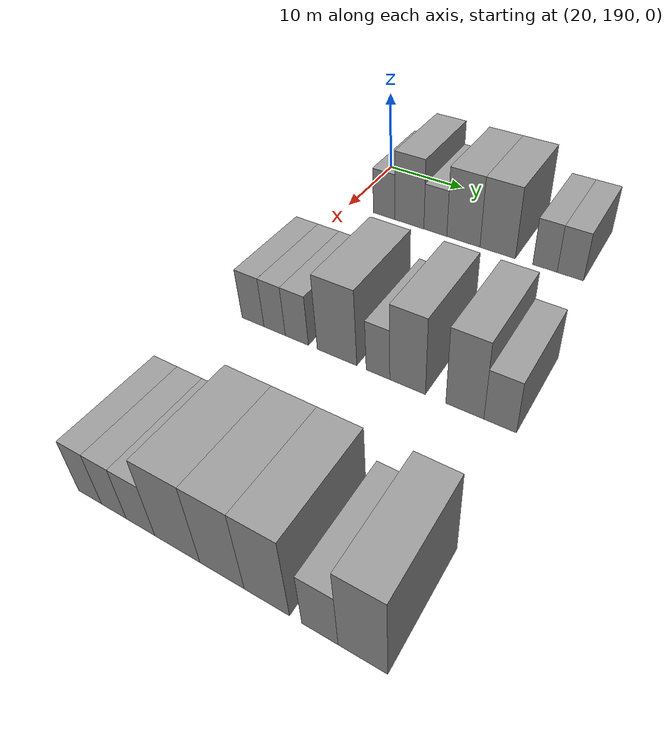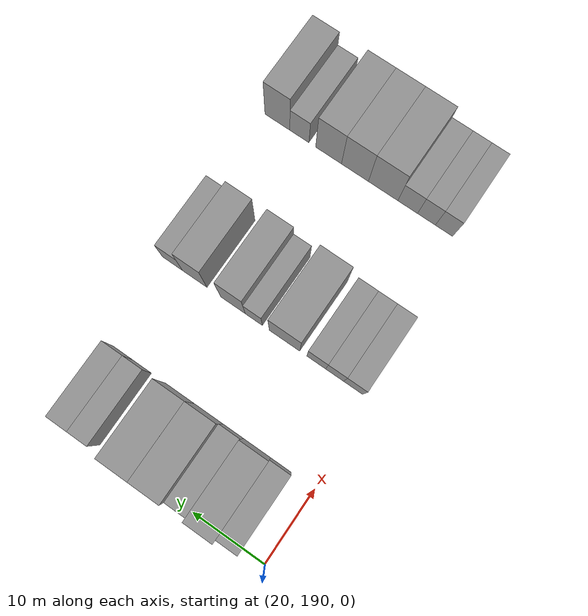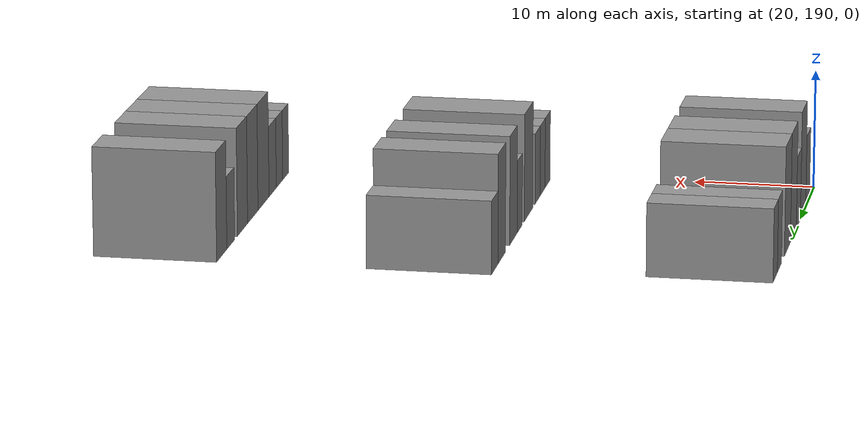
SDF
<sdf version="1.6">
 <world name="default">
  <model name="building_111">
   <static>1</static>
   <pose>25.0000 194.7516 0 0.000000 0.000000 0.000000</pose>
   <link name="link">
    <pose>0 0 3.00 0 0 0</pose>
    <collision name="collision"><geometry><box><size>10.0000 2.8600 6.0000</size></box></geometry></collision>
    <visual name="visual">
     <cast_shadows>0</cast_shadows>
     <geometry><box><size>10.0000 2.8600 6.0000</size></box></geometry>
     <material>
      <script>
       <uri>model://grey_wall/materials/scripts</uri>
       <uri>model://grey_wall/materials/textures</uri>
       <name>vrc/grey_wall</name>
      </script>
     </material>
    </visual>
   </link>
  </model>
  <model name="building_112">
   <static>1</static>
   <pose>25.0000 198.0817 0 0.000000 0.000000 0.000000</pose>
   <link name="link">
    <pose>0 0 4.50 0 0 0</pose>
    <collision name="collision"><geometry><box><size>10.0000 3.8003 9.0000</size></box></geometry></collision>
    <visual name="visual">
     <cast_shadows>0</cast_shadows>
     <geometry><box><size>10.0000 3.8003 9.0000</size></box></geometry>
     <material>
      <script>
       <uri>model://grey_wall/materials/scripts</uri>
       <uri>model://grey_wall/materials/textures</uri>
       <name>vrc/grey_wall</name>
      </script>
     </material>
    </visual>
   </link>
  </model>
  <model name="building_113">
   <static>1</static>
   <pose>25.0000 201.4371 0 0.000000 0.000000 0.000000</pose>
   <link name="link">
    <pose>0 0 3.00 0 0 0</pose>
    <collision name="collision"><geometry><box><size>10.0000 2.9106 6.0000</size></box></geometry></collision>
    <visual name="visual">
     <cast_shadows>0</cast_shadows>
     <geometry><box><size>10.0000 2.9106 6.0000</size></box></geometry>
     <material>
      <script>
       <uri>model://grey_wall/materials/scripts</uri>
       <uri>model://grey_wall/materials/textures</uri>
       <name>vrc/grey_wall</name>
      </script>
     </material>
    </visual>
   </link>
  </model>
  <model name="building_114">
   <static>1</static>
   <pose>25.0000 204.9278 0 0.000000 0.000000 0.000000</pose>
   <link name="link">
    <pose>0 0 4.50 0 0 0</pose>
    <collision name="collision"><geometry><box><size>10.0000 4.0708 9.0000</size></box></geometry></collision>
    <visual name="visual">
     <cast_shadows>0</cast_shadows>
     <geometry><box><size>10.0000 4.0708 9.0000</size></box></geometry>
     <material>
      <script>
       <uri>model://grey_wall/materials/scripts</uri>
       <uri>model://grey_wall/materials/textures</uri>
       <name>vrc/grey_wall</name>
      </script>
     </material>
    </visual>
   </link>
  </model>
  <model name="building_115">
   <static>1</static>
   <pose>25.0000 209.0566 0 0.000000 0.000000 0.000000</pose>
   <link name="link">
    <pose>0 0 4.50 0 0 0</pose>
    <collision name="collision"><geometry><box><size>10.0000 4.1867 9.0000</size></box></geometry></collision>
    <visual name="visual">
     <cast_shadows>0</cast_shadows>
     <geometry><box><size>10.0000 4.1867 9.0000</size></box></geometry>
     <material>
      <script>
       <uri>model://grey_wall/materials/scripts</uri>
       <uri>model://grey_wall/materials/textures</uri>
       <name>vrc/grey_wall</name>
      </script>
     </material>
    </visual>
   </link>
  </model>
  <model name="building_116">
   <static>1</static>
   <pose>25.0000 214.5141 0 0.000000 0.000000 0.000000</pose>
   <link name="link">
    <pose>0 0 3.00 0 0 0</pose>
    <collision name="collision"><geometry><box><size>10.0000 2.7284 6.0000</size></box></geometry></collision>
    <visual name="visual">
     <cast_shadows>0</cast_shadows>
     <geometry><box><size>10.0000 2.7284 6.0000</size></box></geometry>
     <material>
      <script>
       <uri>model://grey_wall/materials/scripts</uri>
       <uri>model://grey_wall/materials/textures</uri>
       <name>vrc/grey_wall</name>
      </script>
     </material>
    </visual>
   </link>
  </model>
  <model name="building_117">
   <static>1</static>
   <pose>25.0000 217.3220 0 0.000000 0.000000 0.000000</pose>
   <link name="link">
    <pose>0 0 3.00 0 0 0</pose>
    <collision name="collision"><geometry><box><size>10.0000 2.8875 6.0000</size></box></geometry></collision>
    <visual name="visual">
     <cast_shadows>0</cast_shadows>
     <geometry><box><size>10.0000 2.8875 6.0000</size></box></geometry>
     <material>
      <script>
       <uri>model://grey_wall/materials/scripts</uri>
       <uri>model://grey_wall/materials/textures</uri>
       <name>vrc/grey_wall</name>
      </script>
     </material>
    </visual>
   </link>
  </model>
  <model name="building_230">
   <static>1</static>
   <pose>47.0000 192.7824 0 0.000000 0.000000 0.000000</pose>
   <link name="link">
    <pose>0 0 3.00 0 0 0</pose>
    <collision name="collision"><geometry><box><size>10.0000 2.6718 6.0000</size></box></geometry></collision>
    <visual name="visual">
     <cast_shadows>0</cast_shadows>
     <geometry><box><size>10.0000 2.6718 6.0000</size></box></geometry>
     <material>
      <script>
       <uri>model://grey_wall/materials/scripts</uri>
       <uri>model://grey_wall/materials/textures</uri>
       <name>vrc/grey_wall</name>
      </script>
     </material>
    </visual>
   </link>
  </model>
  <model name="building_231">
   <static>1</static>
   <pose>47.0000 195.3844 0 0.000000 0.000000 0.000000</pose>
   <link name="link">
    <pose>0 0 3.00 0 0 0</pose>
    <collision name="collision"><geometry><box><size>10.0000 2.5320 6.0000</size></box></geometry></collision>
    <visual name="visual">
     <cast_shadows>0</cast_shadows>
     <geometry><box><size>10.0000 2.5320 6.0000</size></box></geometry>
     <material>
      <script>
       <uri>model://grey_wall/materials/scripts</uri>
       <uri>model://grey_wall/materials/textures</uri>
       <name>vrc/grey_wall</name>
      </script>
     </material>
    </visual>
   </link>
  </model>
  <model name="building_232">
   <static>1</static>
   <pose>47.0000 197.9877 0 0.000000 0.000000 0.000000</pose>
   <link name="link">
    <pose>0 0 3.00 0 0 0</pose>
    <collision name="collision"><geometry><box><size>10.0000 2.6748 6.0000</size></box></geometry></collision>
    <visual name="visual">
     <cast_shadows>0</cast_shadows>
     <geometry><box><size>10.0000 2.6748 6.0000</size></box></geometry>
     <material>
      <script>
       <uri>model://grey_wall/materials/scripts</uri>
       <uri>model://grey_wall/materials/textures</uri>
       <name>vrc/grey_wall</name>
      </script>
     </material>
    </visual>
   </link>
  </model>
  <model name="building_233">
   <static>1</static>
   <pose>47.0000 202.5046 0 0.000000 0.000000 0.000000</pose>
   <link name="link">
    <pose>0 0 4.50 0 0 0</pose>
    <collision name="collision"><geometry><box><size>10.0000 4.3589 9.0000</size></box></geometry></collision>
    <visual name="visual">
     <cast_shadows>0</cast_shadows>
     <geometry><box><size>10.0000 4.3589 9.0000</size></box></geometry>
     <material>
      <script>
       <uri>model://grey_wall/materials/scripts</uri>
       <uri>model://grey_wall/materials/textures</uri>
       <name>vrc/grey_wall</name>
      </script>
     </material>
    </visual>
   </link>
  </model>
  <model name="building_234">
   <static>1</static>
   <pose>47.0000 206.9203 0 0.000000 0.000000 0.000000</pose>
   <link name="link">
    <pose>0 0 3.00 0 0 0</pose>
    <collision name="collision"><geometry><box><size>10.0000 2.4726 6.0000</size></box></geometry></collision>
    <visual name="visual">
     <cast_shadows>0</cast_shadows>
     <geometry><box><size>10.0000 2.4726 6.0000</size></box></geometry>
     <material>
      <script>
       <uri>model://grey_wall/materials/scripts</uri>
       <uri>model://grey_wall/materials/textures</uri>
       <name>vrc/grey_wall</name>
      </script>
     </material>
    </visual>
   </link>
  </model>
  <model name="building_235">
   <static>1</static>
   <pose>47.0000 209.9609 0 0.000000 0.000000 0.000000</pose>
   <link name="link">
    <pose>0 0 4.50 0 0 0</pose>
    <collision name="collision"><geometry><box><size>10.0000 3.6086 9.0000</size></box></geometry></collision>
    <visual name="visual">
     <cast_shadows>0</cast_shadows>
     <geometry><box><size>10.0000 3.6086 9.0000</size></box></geometry>
     <material>
      <script>
       <uri>model://grey_wall/materials/scripts</uri>
       <uri>model://grey_wall/materials/textures</uri>
       <name>vrc/grey_wall</name>
      </script>
     </material>
    </visual>
   </link>
  </model>
  <model name="building_236">
   <static>1</static>
   <pose>47.0000 215.5670 0 0.000000 0.000000 0.000000</pose>
   <link name="link">
    <pose>0 0 4.50 0 0 0</pose>
    <collision name="collision"><geometry><box><size>10.0000 3.6035 9.0000</size></box></geometry></collision>
    <visual name="visual">
     <cast_shadows>0</cast_shadows>
     <geometry><box><size>10.0000 3.6035 9.0000</size></box></geometry>
     <material>
      <script>
       <uri>model://grey_wall/materials/scripts</uri>
       <uri>model://grey_wall/materials/textures</uri>
       <name>vrc/grey_wall</name>
      </script>
     </material>
    </visual>
   </link>
  </model>
  <model name="building_237">
   <static>1</static>
   <pose>47.0000 218.8610 0 0.000000 0.000000 0.000000</pose>
   <link name="link">
    <pose>0 0 3.00 0 0 0</pose>
    <collision name="collision"><geometry><box><size>10.0000 2.9845 6.0000</size></box></geometry></collision>
    <visual name="visual">
     <cast_shadows>0</cast_shadows>
     <geometry><box><size>10.0000 2.9845 6.0000</size></box></geometry>
     <material>
      <script>
       <uri>model://grey_wall/materials/scripts</uri>
       <uri>model://grey_wall/materials/textures</uri>
       <name>vrc/grey_wall</name>
      </script>
     </material>
    </visual>
   </link>
  </model>
  <model name="building_350">
   <static>1</static>
   <pose>69.0000 194.1911 0 0.000000 0.000000 0.000000</pose>
   <link name="link">
    <pose>0 0 3.00 0 0 0</pose>
    <collision name="collision"><geometry><box><size>10.0000 2.4751 6.0000</size></box></geometry></collision>
    <visual name="visual">
     <cast_shadows>0</cast_shadows>
     <geometry><box><size>10.0000 2.4751 6.0000</size></box></geometry>
     <material>
      <script>
       <uri>model://grey_wall/materials/scripts</uri>
       <uri>model://grey_wall/materials/textures</uri>
       <name>vrc/grey_wall</name>
      </script>
     </material>
    </visual>
   </link>
  </model>
  <model name="building_351">
   <static>1</static>
   <pose>69.0000 196.7168 0 0.000000 0.000000 0.000000</pose>
   <link name="link">
    <pose>0 0 3.00 0 0 0</pose>
    <collision name="collision"><geometry><box><size>10.0000 2.5763 6.0000</size></box></geometry></collision>
    <visual name="visual">
     <cast_shadows>0</cast_shadows>
     <geometry><box><size>10.0000 2.5763 6.0000</size></box></geometry>
     <material>
      <script>
       <uri>model://grey_wall/materials/scripts</uri>
       <uri>model://grey_wall/materials/textures</uri>
       <name>vrc/grey_wall</name>
      </script>
     </material>
    </visual>
   </link>
  </model>
  <model name="building_352">
   <static>1</static>
   <pose>69.0000 199.4391 0 0.000000 0.000000 0.000000</pose>
   <link name="link">
    <pose>0 0 3.00 0 0 0</pose>
    <collision name="collision"><geometry><box><size>10.0000 2.8681 6.0000</size></box></geometry></collision>
    <visual name="visual">
     <cast_shadows>0</cast_shadows>
     <geometry><box><size>10.0000 2.8681 6.0000</size></box></geometry>
     <material>
      <script>
       <uri>model://grey_wall/materials/scripts</uri>
       <uri>model://grey_wall/materials/textures</uri>
       <name>vrc/grey_wall</name>
      </script>
     </material>
    </visual>
   </link>
  </model>
  <model name="building_353">
   <static>1</static>
   <pose>69.0000 203.0294 0 0.000000 0.000000 0.000000</pose>
   <link name="link">
    <pose>0 0 4.50 0 0 0</pose>
    <collision name="collision"><geometry><box><size>10.0000 4.3126 9.0000</size></box></geometry></collision>
    <visual name="visual">
     <cast_shadows>0</cast_shadows>
     <geometry><box><size>10.0000 4.3126 9.0000</size></box></geometry>
     <material>
      <script>
       <uri>model://grey_wall/materials/scripts</uri>
       <uri>model://grey_wall/materials/textures</uri>
       <name>vrc/grey_wall</name>
      </script>
     </material>
    </visual>
   </link>
  </model>
  <model name="building_354">
   <static>1</static>
   <pose>69.0000 207.1771 0 0.000000 0.000000 0.000000</pose>
   <link name="link">
    <pose>0 0 4.50 0 0 0</pose>
    <collision name="collision"><geometry><box><size>10.0000 3.9827 9.0000</size></box></geometry></collision>
    <visual name="visual">
     <cast_shadows>0</cast_shadows>
     <geometry><box><size>10.0000 3.9827 9.0000</size></box></geometry>
     <material>
      <script>
       <uri>model://grey_wall/materials/scripts</uri>
       <uri>model://grey_wall/materials/textures</uri>
       <name>vrc/grey_wall</name>
      </script>
     </material>
    </visual>
   </link>
  </model>
  <model name="building_355">
   <static>1</static>
   <pose>69.0000 211.0948 0 0.000000 0.000000 0.000000</pose>
   <link name="link">
    <pose>0 0 4.50 0 0 0</pose>
    <collision name="collision"><geometry><box><size>10.0000 3.8527 9.0000</size></box></geometry></collision>
    <visual name="visual">
     <cast_shadows>0</cast_shadows>
     <geometry><box><size>10.0000 3.8527 9.0000</size></box></geometry>
     <material>
      <script>
       <uri>model://grey_wall/materials/scripts</uri>
       <uri>model://grey_wall/materials/textures</uri>
       <name>vrc/grey_wall</name>
      </script>
     </material>
    </visual>
   </link>
  </model>
  <model name="building_356">
   <static>1</static>
   <pose>69.0000 215.4631 0 0.000000 0.000000 0.000000</pose>
   <link name="link">
    <pose>0 0 3.00 0 0 0</pose>
    <collision name="collision"><geometry><box><size>10.0000 2.8840 6.0000</size></box></geometry></collision>
    <visual name="visual">
     <cast_shadows>0</cast_shadows>
     <geometry><box><size>10.0000 2.8840 6.0000</size></box></geometry>
     <material>
      <script>
       <uri>model://grey_wall/materials/scripts</uri>
       <uri>model://grey_wall/materials/textures</uri>
       <name>vrc/grey_wall</name>
      </script>
     </material>
    </visual>
   </link>
  </model>
  <model name="building_357">
   <static>1</static>
   <pose>69.0000 218.7823 0 0.000000 0.000000 0.000000</pose>
   <link name="link">
    <pose>0 0 4.50 0 0 0</pose>
    <collision name="collision"><geometry><box><size>10.0000 3.7544 9.0000</size></box></geometry></collision>
    <visual name="visual">
     <cast_shadows>0</cast_shadows>
     <geometry><box><size>10.0000 3.7544 9.0000</size></box></geometry>
     <material>
      <script>
       <uri>model://grey_wall/materials/scripts</uri>
       <uri>model://grey_wall/materials/textures</uri>
       <name>vrc/grey_wall</name>
      </script>
     </material>
    </visual>
   </link>
  </model>
 </world>
</sdf>
